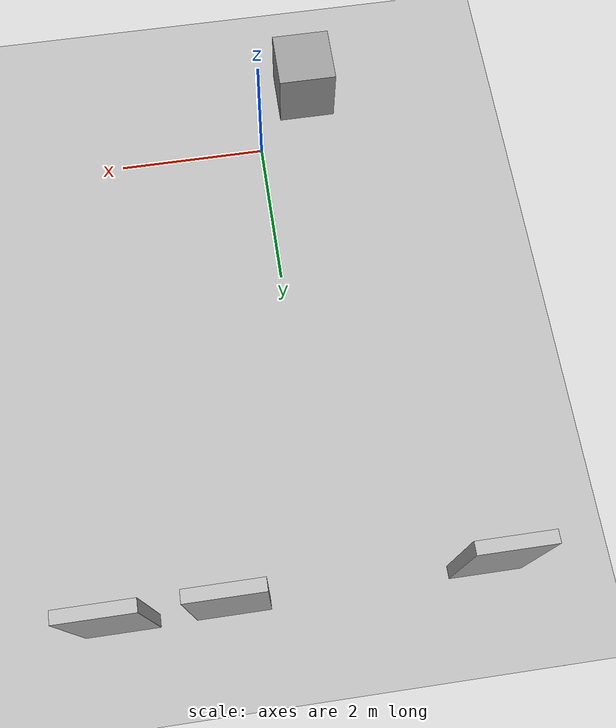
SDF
<sdf version="1.7">
 <world name="default">
  <model name="ground_plane">
   <static>1</static>
   <link name="link">
    <collision name="collision">
     <geometry><plane><normal>0 0 1</normal><size>100 100</size></plane></geometry>
     <surface>
      <contact><collide_bitmask>65535</collide_bitmask></contact>
      <friction><ode><mu>100</mu><mu2>50</mu2></ode></friction>
     </surface>
    </collision>
    <visual name="visual">
     <cast_shadows>0</cast_shadows>
     <geometry><plane><normal>0 0 1</normal><size>100 100</size></plane></geometry>
     <material>
      <script><uri>file://media/materials/scripts/gazebo.material</uri><name>Gazebo/Grey</name></script>
     </material>
    </visual>
   </link>
  </model>
  <model name="door">
   <link name="link_0">
    <visual name="visual">
     <pose>0 0 1 0 -0 0</pose>
     <geometry><box><size>0.9 0.15 2</size></box></geometry>
     <material>
      <script>
       <uri>model://door/materials/scripts</uri>
       <uri>model://door/materials/textures</uri>
       <name>door</name>
      </script>
     </material>
    </visual>
    <collision name="collision">
     <pose>0 0 1 0 -0 0</pose>
     <geometry><box><size>0.9 0.15 2</size></box></geometry>
    </collision>
   </link>
   <static>1</static>
   <pose>1.16109 6.24205 0 0 -0 0</pose>
  </model>
  <model name="door_0">
   <link name="link_0">
    <visual name="visual">
     <pose>0 0 1 0 -0 0</pose>
     <geometry><box><size>0.9 0.15 2</size></box></geometry>
     <material>
      <script>
       <uri>model://door/materials/scripts</uri>
       <uri>model://door/materials/textures</uri>
       <name>door</name>
      </script>
     </material>
    </visual>
    <collision name="collision">
     <pose>0 0 1 0 -0 0</pose>
     <geometry><box><size>0.9 0.15 2</size></box></geometry>
    </collision>
   </link>
   <static>1</static>
   <pose>2.49922 6.26043 0 0 -0 0</pose>
  </model>
  <model name="door_1">
   <link name="link_0">
    <visual name="visual">
     <pose>0 0 1 0 -0 0</pose>
     <geometry><box><size>0.9 0.15 2</size></box></geometry>
     <material>
      <script>
       <uri>model://door/materials/scripts</uri>
       <uri>model://door/materials/textures</uri>
       <name>door</name>
      </script>
     </material>
    </visual>
    <collision name="collision">
     <pose>0 0 1 0 -0 0</pose>
     <geometry><box><size>0.9 0.15 2</size></box></geometry>
    </collision>
   </link>
   <static>1</static>
   <pose>-1.92171 6.19208 0 0 -0 0</pose>
  </model>
  <model name="Floor">
   <link name="main">
    <pose>0 0 0.01 0 -0 0</pose>
    <collision name="main_Collision">
     <geometry><box><size>40 40 0.01</size></box></geometry>
     <surface><friction><ode><mu>1.01</mu><mu2>1.01</mu2></ode></friction></surface>
    </collision>
    <visual name="main_Visual">
     <geometry><box><size>40 40 0.01</size></box></geometry>
     <material>
      <script>
       <uri>model://Floor/materials/scripts</uri>
       <uri>model://Floor/materials/textures</uri>
       <name>floor</name>
      </script>
     </material>
    </visual>
   </link>
   <static>1</static>
   <pose>10.2498 7.84842 0 0 -0 0</pose>
  </model>
  <model name="unit_box">
   <pose>-0.722626 -0.853853 0.477744 -6e-06 6e-06 -1.1e-05</pose>
   <link name="link">
    <inertial>
     <mass>1</mass>
     <inertia>
      <ixx>0.166667</ixx>
      <ixy>0</ixy>
      <ixz>0</ixz>
      <iyy>0.166667</iyy>
      <iyz>0</iyz>
      <izz>0.166667</izz>
     </inertia>
    </inertial>
    <collision name="collision"><geometry><box><size>0.77979 0.773233 0.925498</size></box></geometry></collision>
    <visual name="visual">
     <geometry><box><size>0.77979 0.773233 0.925498</size></box></geometry>
     <material>
      <script><name>Gazebo/Grey</name><uri>file://media/materials/scripts/gazebo.material</uri></script>
     </material>
    </visual>
   </link>
  </model>
 </world>
</sdf>
